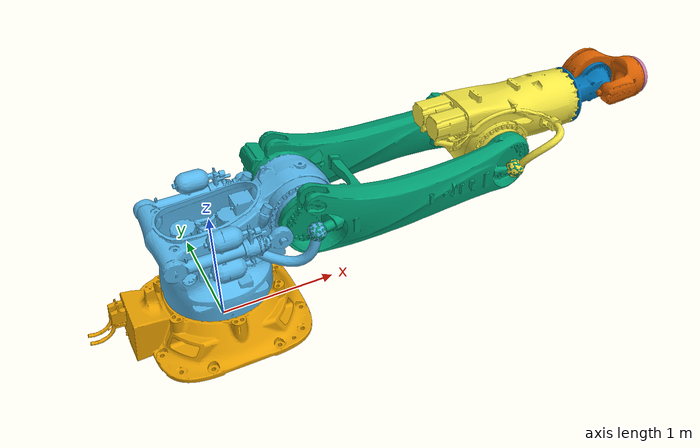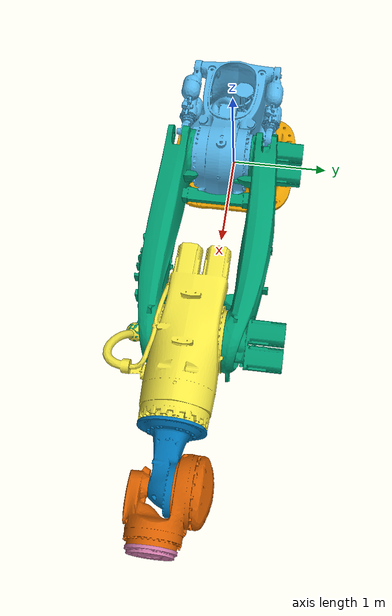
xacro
<?xml version="1.0"?>
<!--Generates a urdf from the macro in kr120_r3900-2_k_macro.xacro -->
<robot name="kuka_kr1250_r3700-2f" xmlns:xacro="http://wiki.ros.org/xacro">
    <xacro:include filename="$(find kuka_kr1250_support)/urdf/kr1250_r3700-2f_macro.xacro" />
    <xacro:kuka_kr1250_r3700-2f prefix=""/>
</robot>

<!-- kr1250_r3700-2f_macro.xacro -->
<robot xmlns:xacro="http://wiki.ros.org/xacro">

  <xacro:include filename="$(find kuka_resources)/urdf/common_materials.xacro"/>
  <xacro:macro name="kuka_kr1250_r3700-2f" params="prefix">
    <!-- LINKS -->
    <!-- base link -->
    <link name="${prefix}base_link">
      <inertial>
        <origin xyz="0 0 0" rpy="0 0 0"/>
        <mass value="2"/>
        <inertia ixx="0.01" ixy="0" ixz="0" iyy="0.01" iyz="0" izz="0.01" />
      </inertial>
      <visual>
        <origin xyz="0 0 0" rpy="0 0 0"/>
        <geometry>
          <mesh filename="package://kuka_kr1250_support/meshes/kr1250_r3700-2f/visual/base_link.stl" />
        </geometry>
        <xacro:material_kuka_pedestal />
      </visual>
      <collision>
        <origin xyz="0 0 0" rpy="0 0 0"/>
        <geometry>
          <mesh filename="package://kuka_kr1250_support/meshes/kr1250_r3700-2f/collision/base_link.stl" />
        </geometry>
      </collision>
    </link>
    <!-- link 1 (A1) -->
    <link name="${prefix}link_1">
      <inertial>
        <origin xyz="0 0 0" rpy="0 0 0"/>
        <mass value="2"/>
        <inertia ixx="0.01" ixy="0" ixz="0" iyy="0.01" iyz="0" izz="0.01" />
      </inertial>
      <visual>
        <origin xyz="0 0 0" rpy="0 0 0"/>
        <geometry>
          <mesh filename="package://kuka_kr1250_support/meshes/kr1250_r3700-2f/visual/link_1.stl" />
        </geometry>
        <xacro:material_kuka_orange />
      </visual>
      <collision>
        <origin xyz="0 0 0" rpy="0 0 0"/>
        <geometry>
          <mesh filename="package://kuka_kr1250_support/meshes/kr1250_r3700-2f/collision/link_1.stl" />
        </geometry>
      </collision>
    </link>
    <!-- link 2 -->
    <link name="${prefix}link_2">
      <inertial>
        <origin xyz="0 0 0" rpy="0 0 0"/>
        <mass value="2"/>
        <inertia ixx="0.01" ixy="0" ixz="0" iyy="0.01" iyz="0" izz="0.01" />
      </inertial>
      <visual>
        <origin xyz="0 0 0" rpy="0 0 0"/>
        <geometry>
          <mesh filename="package://kuka_kr1250_support/meshes/kr1250_r3700-2f/visual/link_2.stl"/>
        </geometry>
        <xacro:material_kuka_orange />
      </visual>
      <collision>
        <origin xyz="0 0 0" rpy="0 0 0"/>
        <geometry>
          <mesh filename="package://kuka_kr1250_support/meshes/kr1250_r3700-2f/collision/link_2.stl" />
        </geometry>
      </collision>
    </link>
    <!-- link 3 -->
    <link name="${prefix}link_3">
      <inertial>
        <origin xyz="0 0 0" rpy="0 0 0"/>
        <mass value="2"/>
        <inertia ixx="0.01" ixy="0" ixz="0" iyy="0.01" iyz="0" izz="0.01" />
      </inertial>
      <visual>
        <origin xyz="0 0 0" rpy="0 0 0"/>
        <geometry>
          <mesh filename="package://kuka_kr1250_support/meshes/kr1250_r3700-2f/visual/link_3.stl" />
        </geometry>
        <xacro:material_kuka_orange />
      </visual>
      <collision>
        <origin xyz="0 0 0" rpy="0 0 0"/>
        <geometry>
          <mesh filename="package://kuka_kr1250_support/meshes/kr1250_r3700-2f/collision/link_3.stl" />
        </geometry>
      </collision>
    </link>
    <!-- link 4 -->
    <link name="${prefix}link_4">
      <inertial>
        <origin xyz="0 0 0" rpy="0 0 0"/>
        <mass value="2"/>
        <inertia ixx="0.01" ixy="0" ixz="0" iyy="0.01" iyz="0" izz="0.01" />
      </inertial>
      <visual>
        <origin xyz="0 0 0" rpy="0 0 0"/>
        <geometry>
          <mesh filename="package://kuka_kr1250_support/meshes/kr1250_r3700-2f/visual/link_4.stl" />
        </geometry>
        <xacro:material_kuka_orange />
      </visual>
      <collision>
        <origin xyz="0 0 0" rpy="0 0 0"/>
        <geometry>
          <mesh filename="package://kuka_kr1250_support/meshes/kr1250_r3700-2f/collision/link_4.stl" />
        </geometry>
      </collision>
    </link>
    <!-- link 5 -->
    <link name="${prefix}link_5">
      <inertial>
        <origin xyz="0 0 0" rpy="0 0 0"/>
        <mass value="2"/>
        <inertia ixx="0.01" ixy="0" ixz="0" iyy="0.01" iyz="0" izz="0.01" />
      </inertial>
      <visual>
        <origin xyz="0 0 0" rpy="0 0 0"/>
        <geometry>
          <mesh filename="package://kuka_kr1250_support/meshes/kr1250_r3700-2f/visual/link_5.stl" />
        </geometry>
        <xacro:material_kuka_orange />
      </visual>
      <collision>
        <origin xyz="0 0 0" rpy="0 0 0"/>
        <geometry>
          <mesh filename="package://kuka_kr1250_support/meshes/kr1250_r3700-2f/collision/link_5.stl" />
        </geometry>
      </collision>
    </link>
    <!-- link 6 -->
    <link name="${prefix}link_6">
      <inertial>
        <origin xyz="0 0 0" rpy="0 0 0"/>
        <mass value="2"/>
        <inertia ixx="0.01" ixy="0" ixz="0" iyy="0.01" iyz="0" izz="0.01" />
      </inertial>
      <visual>
        <origin xyz="0 0 0" rpy="0 0 0"/>
        <geometry>
          <mesh filename="package://kuka_kr1250_support/meshes/kr1250_r3700-2f/visual/link_6.stl" />
        </geometry>
        <xacro:material_kuka_black />
      </visual>
      <collision>
        <origin xyz="0 0 0" rpy="0 0 0"/>
        <geometry>
          <mesh filename="package://kuka_kr1250_support/meshes/kr1250_r3700-2f/collision/link_6.stl" />
        </geometry>
      </collision>
    </link>
    <!-- Following REP199, this frame shall be use to attach EEF or other equipment -->
    <link name="${prefix}flange" />
    <!-- END LINKS -->

    <!-- JOINTS -->
    <!-- joint 1 (A1) -->
    <joint name="${prefix}joint_a1" type="revolute">
      <origin xyz="0 0 0.950" rpy="0 0 0"/>
      <parent link="${prefix}base_link"/>
      <child link="${prefix}link_1"/>
      <axis xyz="0 0 -1"/>
      <limit effort="0" lower="${-radians(170)}" upper="${radians(170)}" velocity="${radians(50)}"/>
    </joint>
    <!-- joint 2 (A2) -->
    <joint name="${prefix}joint_a2" type="revolute">
      <origin xyz="0.700 0 0" rpy="0 ${radians(90)} 0"/>
      <parent link="${prefix}link_1"/>
      <child link="${prefix}link_2"/>
      <axis xyz="0 1 0"/>
      <limit effort="0" lower="${-radians(120)}" upper="${radians(5)}" velocity="${radians(40)}"/>
    </joint>
    <!-- joint 3 (A3) -->
    <joint name="${prefix}joint_a3" type="revolute">
      <origin xyz="0 0 1.800" rpy="0 ${radians(-90)} 0"/>
      <parent link="${prefix}link_2"/>
      <child link="${prefix}link_3"/>
      <axis xyz="0 1 0"/>
      <limit effort="0" lower="${-radians(100)}" upper="${radians(150)}" velocity="${radians(40)}"/>
    </joint>
    <!-- joint 4 (A4) -->
    <joint name="${prefix}joint_a4" type="revolute">
      <origin xyz="1.2 0 0.25" rpy="0 0 0"/>
      <parent link="${prefix}link_3"/>
      <child link="${prefix}link_4"/>
      <axis xyz="-1 0 0"/>
      <limit effort="0" lower="${-radians(350)}" upper="${radians(350)}" velocity="${radians(60)}"/>
    </joint>
    <!-- joint 5 (A5) -->
    <joint name="${prefix}joint_a5" type="revolute">
      <origin xyz="0 0 0" rpy="0 0 0"/>
      <parent link="${prefix}link_4"/>
      <child link="${prefix}link_5"/>
      <axis xyz="0 1 0"/>
      <limit effort="0" lower="${-radians(120)}" upper="${radians(120)}" velocity="${radians(60)}"/>
    </joint>
    <!-- joint 6 (A6) -->
    <joint name="${prefix}joint_a6" type="revolute">
      <origin xyz="0.425 0 0" rpy="0 0 0"/>
      <parent link="${prefix}link_5"/>
      <child link="${prefix}link_6"/>
      <axis xyz="-1 0 0"/>
      <limit effort="0" lower="${-radians(350)}" upper="${radians(350)}" velocity="${radians(80)}"/>
    </joint>
    <!-- tool frame - fixed frame -->
    <joint name="${prefix}joint_a6-flange" type="fixed">
      <parent link="${prefix}link_6"/>
      <child link="${prefix}flange"/>
      <origin xyz="0 0 0" rpy="0 0 0"/>
    </joint>
    <!-- END JOINTS -->

    <!-- ROS base_link to KUKA $ROBROOT coordinate system transform -->
    <link name="${prefix}base" />
    <joint name="${prefix}base_link-base" type="fixed">
      <origin xyz="0 0 0" rpy="0 0 0"/>
      <parent link="${prefix}base_link"/>
      <child link="${prefix}base"/>
    </joint>

    <!-- This frame corresponds to the $TOOL coordinate system in KUKA KRC controllers -->
    <link name="${prefix}tool0" />
    <joint name="${prefix}flange-tool0" type="fixed">
      <parent link="${prefix}flange"/>
      <child link="${prefix}tool0"/>
      <origin xyz="0 0 0" rpy="0 ${pi/2} 0"/>
    </joint>
  </xacro:macro>
</robot>
